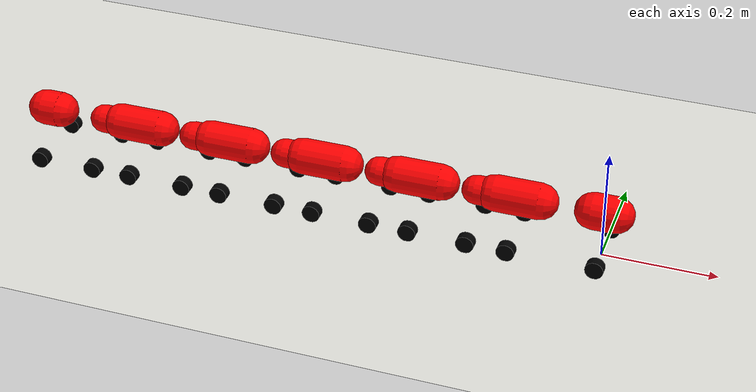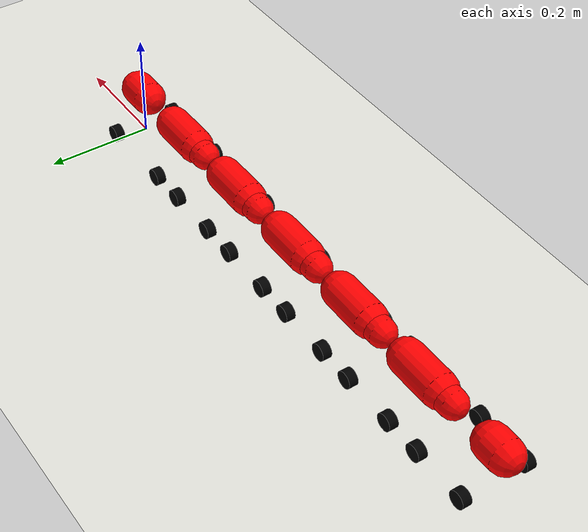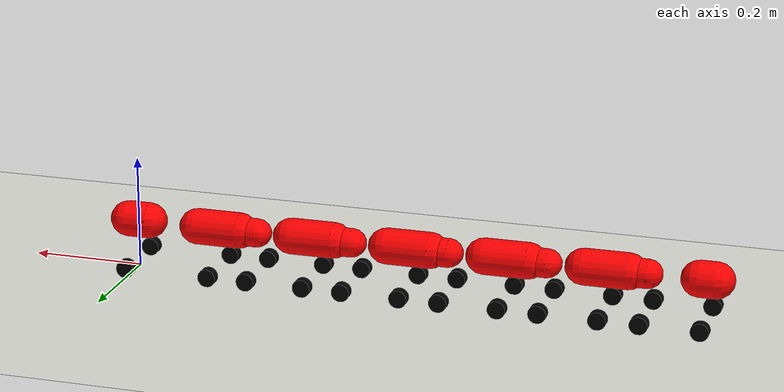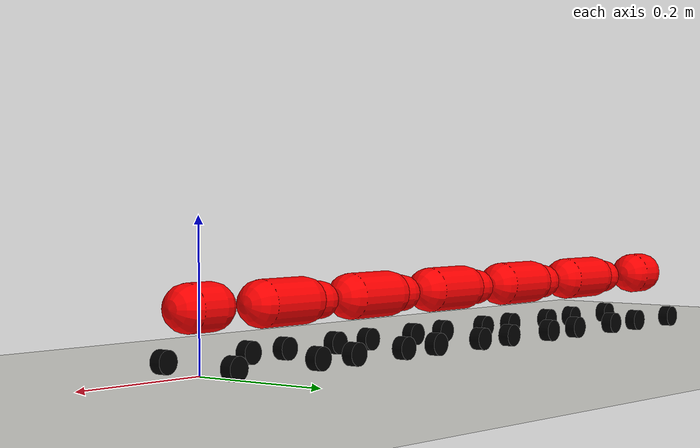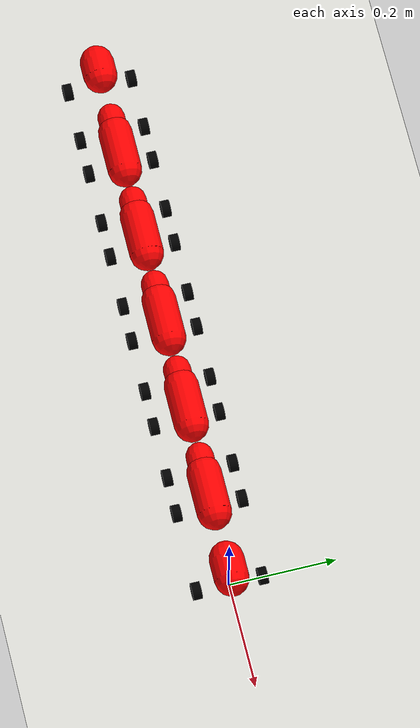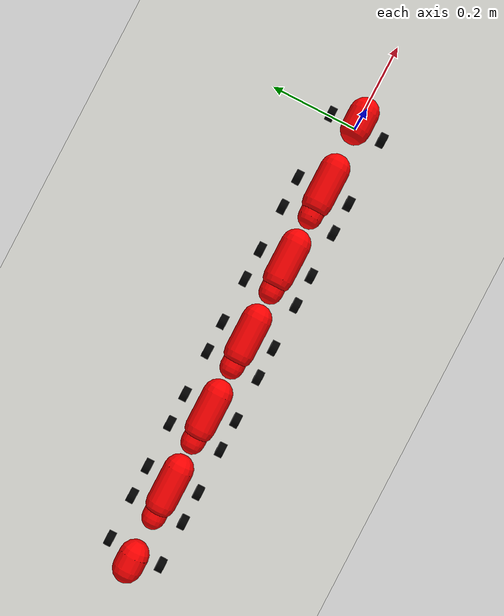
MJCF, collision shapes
<mujoco model="worm_v6_longworm2">
  <compiler meshdir="D:\doso\robot\worm-sim-ribbon-publish\meshes" angle="radian" />
  <option timestep="0.002" gravity="0 0 -9.81" />
  <size memory="500M" />

  <visual>
    <global offwidth="1920" offheight="1080" />
    <quality shadowsize="4096" />
    <map znear="0.001" />
  </visual>

  <default>
    <geom condim="4" />
  </default>

  <asset>
    <texture name="grid" type="2d" builtin="checker" width="512" height="512" rgb1="0.93 0.93 0.90" rgb2="0.82 0.82 0.80" />
    <material name="grid_mat" texture="grid" texrepeat="20 20" reflectance="0.1" />
    <mesh name="base_link" file="longworm2/base_link.STL" smoothnormal="true" />
    <mesh name="w1-1_Link" file="longworm2/w1-1_Link.STL" smoothnormal="true" />
    <mesh name="w1-2_Link" file="longworm2/w1-2_Link.STL" smoothnormal="true" />
    <mesh name="back1_Link" file="longworm2/back1_Link.STL" smoothnormal="true" />
    <mesh name="w1-3_Link" file="longworm2/w1-3_Link.STL" smoothnormal="true" />
    <mesh name="w1-4_Link" file="longworm2/w1-4_Link.STL" smoothnormal="true" />
    <mesh name="front2_Link" file="longworm2/front2_Link.STL" smoothnormal="true" />
    <mesh name="w2-1_Link" file="longworm2/w2-1_Link.STL" smoothnormal="true" />
    <mesh name="w2-2_Link" file="longworm2/w2-2_Link.STL" smoothnormal="true" />
    <mesh name="back2_Link" file="longworm2/back2_Link.STL" smoothnormal="true" />
    <mesh name="w2-3_Link" file="longworm2/w2-3_Link.STL" smoothnormal="true" />
    <mesh name="w2-4_Link" file="longworm2/w2-4_Link.STL" smoothnormal="true" />
    <mesh name="front3_Link" file="longworm2/front3_Link.STL" smoothnormal="true" />
    <mesh name="w3-1_Link" file="longworm2/w3-1_Link.STL" smoothnormal="true" />
    <mesh name="w3-2_Link" file="longworm2/w3-2_Link.STL" smoothnormal="true" />
    <mesh name="back3_Link" file="longworm2/back3_Link.STL" smoothnormal="true" />
    <mesh name="w3-3_Link" file="longworm2/w3-3_Link.STL" smoothnormal="true" />
    <mesh name="w3-4_Link" file="longworm2/w3-4_Link.STL" smoothnormal="true" />
    <mesh name="front4_Link" file="longworm2/front4_Link.STL" smoothnormal="true" />
    <mesh name="w4-1_Link" file="longworm2/w4-1_Link.STL" smoothnormal="true" />
    <mesh name="w4-2_Link" file="longworm2/w4-2_Link.STL" smoothnormal="true" />
    <mesh name="back4_Link" file="longworm2/back4_Link.STL" smoothnormal="true" />
    <mesh name="w4-3_Link" file="longworm2/w4-3_Link.STL" smoothnormal="true" />
    <mesh name="w4-4_Link" file="longworm2/w4-4_Link.STL" smoothnormal="true" />
    <mesh name="front5_Link" file="longworm2/front5_Link.STL" smoothnormal="true" />
    <mesh name="w5-1_Link" file="longworm2/w5-1_Link.STL" smoothnormal="true" />
    <mesh name="w5-2_Link" file="longworm2/w5-2_Link.STL" smoothnormal="true" />
    <mesh name="back5_Link" file="longworm2/back5_Link.STL" smoothnormal="true" />
    <mesh name="w5-3_Link" file="longworm2/w5-3_Link.STL" smoothnormal="true" />
    <mesh name="w5-4_Link" file="longworm2/w5-4_Link.STL" smoothnormal="true" />
    <mesh name="front6_Link" file="longworm2/front6_Link.STL" smoothnormal="true" />
    <mesh name="w6-1_Link" file="longworm2/w6-1_Link.STL" smoothnormal="true" />
    <mesh name="w6-2_Link" file="longworm2/w6-2_Link.STL" smoothnormal="true" />
    <mesh name="back6_Link" file="longworm2/back6_Link.STL" smoothnormal="true" />
    <mesh name="w6-3_Link" file="longworm2/w6-3_Link.STL" smoothnormal="true" />
    <mesh name="w6-4_Link" file="longworm2/w6-4_Link.STL" smoothnormal="true" />
  </asset>

  <worldbody>
    <light pos="0 0 3.0" dir="0 0 -1" diffuse="0.9 0.9 0.9" ambient="0.3 0.3 0.3" />
    <light pos="1.0 -0.5 2.5" dir="-0.3 0.2 -1" diffuse="0.5 0.5 0.5" />
    <light pos="-1.0 0.5 2.0" dir="0.3 -0.1 -1" diffuse="0.3 0.3 0.3" />
    <geom name="floor" type="plane" size="10 10 0.1" material="grid_mat" friction="1.0 0.005 0.001" />

    <body name="base_link" pos="0.000000 0.000000 0.086000">
      <freejoint name="root" />
      <geom name="vis_base_link" type="mesh" mesh="base_link" rgba="0.79 0.82 0.93 1" contype="0" conaffinity="0" mass="0.001" />
      <geom name="col_base_link" type="capsule" fromto="-0.02 0 0  0.02 0 0" size="0.032" mass="0.4217" rgba="1 0 0 0" friction="0.3 0.005 0.001" />
      <body name="w1-1_Link" pos="0.002500 0.061760 -0.071558">
        <joint name="w1-1" type="hinge" axis="0.00000 -1.00000 0.00000" damping="0.002" armature="0.0002" />
        <geom name="vis_w1-1_Link" type="mesh" mesh="w1-1_Link" rgba="0.79 0.82 0.93 1" contype="0" conaffinity="0" mass="0.001" />
        <geom name="col_w1-1_Link" type="cylinder" size="0.016 0.0085" euler="1.5708 0 0" mass="0.0088" rgba="0 0 0 0" friction="1.5 0.01 0.001" />
      </body>
      <body name="w1-2_Link" pos="0.002500 -0.061760 -0.071558">
        <joint name="w1-2" type="hinge" axis="0.00000 1.00000 0.00000" damping="0.002" armature="0.0002" />
        <geom name="vis_w1-2_Link" type="mesh" mesh="w1-2_Link" rgba="0.79 0.82 0.93 1" contype="0" conaffinity="0" mass="0.001" />
        <geom name="col_w1-2_Link" type="cylinder" size="0.016 0.0085" euler="1.5708 0 0" mass="0.0088" rgba="0 0 0 0" friction="1.5 0.01 0.001" />
      </body>
      <body name="back1_Link" pos="-0.151000 0.000000 -0.001535">
        <joint name="back1" type="slide" axis="-0.99984 0.00000 -0.01802" range="-0.0500 0.0000" damping="10" stiffness="300" />
        <geom name="vis_back1_Link" type="mesh" mesh="back1_Link" rgba="0.78 0.76 0.74 1" contype="0" conaffinity="0" mass="0.001" />
        <geom name="col_back1_Link" type="capsule" fromto="-0.04 0 0  0.04 0 0" size="0.032" mass="0.5428" rgba="1 0 0 0" friction="0.3 0.005 0.001" />
        <body name="w1-3_Link" pos="-0.000500 0.061760 -0.070023">
          <joint name="w1-3" type="hinge" axis="0.00000 -1.00000 0.00000" damping="0.002" armature="0.0002" />
          <geom name="vis_w1-3_Link" type="mesh" mesh="w1-3_Link" rgba="0.79 0.82 0.93 1" contype="0" conaffinity="0" mass="0.001" />
          <geom name="col_w1-3_Link" type="cylinder" size="0.016 0.0085" euler="1.5708 0 0" mass="0.0088" rgba="0 0 0 0" friction="1.5 0.01 0.001" />
        </body>
        <body name="w1-4_Link" pos="-0.000500 -0.061760 -0.070023">
          <joint name="w1-4" type="hinge" axis="0.00000 1.00000 0.00000" damping="0.002" armature="0.0002" />
          <geom name="vis_w1-4_Link" type="mesh" mesh="w1-4_Link" rgba="0.79 0.82 0.93 1" contype="0" conaffinity="0" mass="0.001" />
          <geom name="col_w1-4_Link" type="cylinder" size="0.016 0.0085" euler="1.5708 0 0" mass="0.0088" rgba="0 0 0 0" friction="1.5 0.01 0.001" />
        </body>
        <body name="front2_Link" pos="-0.058000 0.000000 -0.001045">
          <joint name="front2" type="hinge" axis="0.00000 0.00000 -1.00000" range="-1.5700 1.5700" damping="5" />
          <geom name="vis_front2_Link" type="mesh" mesh="front2_Link" rgba="1.0 1.0 1.0 1" contype="0" conaffinity="0" mass="0.001" />
          <geom name="col_front2_Link" type="capsule" fromto="-0.015 0 0  0.015 0 0" size="0.0256" mass="0.0656" rgba="1 0 0 0" friction="0.3 0.005 0.001" />
          <body name="w2-1_Link" pos="-0.014000 0.061760 -0.068978">
            <joint name="w2-1" type="hinge" axis="0.00000 -1.00000 0.00000" damping="0.002" armature="0.0002" />
            <geom name="vis_w2-1_Link" type="mesh" mesh="w2-1_Link" rgba="0.79 0.82 0.93 1" contype="0" conaffinity="0" mass="0.001" />
            <geom name="col_w2-1_Link" type="cylinder" size="0.016 0.0085" euler="1.5708 0 0" mass="0.0088" rgba="0 0 0 0" friction="1.5 0.01 0.001" />
          </body>
          <body name="w2-2_Link" pos="-0.014000 -0.061760 -0.068978">
            <joint name="w2-2" type="hinge" axis="0.00000 1.00000 0.00000" damping="0.002" armature="0.0002" />
            <geom name="vis_w2-2_Link" type="mesh" mesh="w2-2_Link" rgba="0.79 0.82 0.93 1" contype="0" conaffinity="0" mass="0.001" />
            <geom name="col_w2-2_Link" type="cylinder" size="0.016 0.0085" euler="1.5708 0 0" mass="0.0088" rgba="0 0 0 0" friction="1.5 0.01 0.001" />
          </body>
          <body name="back2_Link" pos="-0.117500 0.000000 0.001045">
            <joint name="back2" type="slide" axis="-0.99984 0.00000 -0.01802" range="-0.0500 0.0000" damping="10" stiffness="300" />
            <geom name="vis_back2_Link" type="mesh" mesh="back2_Link" rgba="0.78 0.76 0.74 1" contype="0" conaffinity="0" mass="0.001" />
            <geom name="col_back2_Link" type="capsule" fromto="-0.04 0 0  0.04 0 0" size="0.032" mass="0.5428" rgba="1 0 0 0" friction="0.3 0.005 0.001" />
            <body name="w2-3_Link" pos="-0.000500 0.061760 -0.070023">
              <joint name="w2-3" type="hinge" axis="0.00000 -1.00000 0.00000" damping="0.002" armature="0.0002" />
              <geom name="vis_w2-3_Link" type="mesh" mesh="w2-3_Link" rgba="0.79 0.82 0.93 1" contype="0" conaffinity="0" mass="0.001" />
              <geom name="col_w2-3_Link" type="cylinder" size="0.016 0.0085" euler="1.5708 0 0" mass="0.0088" rgba="0 0 0 0" friction="1.5 0.01 0.001" />
            </body>
            <body name="w2-4_Link" pos="-0.000500 -0.061760 -0.070023">
              <joint name="w2-4" type="hinge" axis="0.00000 1.00000 0.00000" damping="0.002" armature="0.0002" />
              <geom name="vis_w2-4_Link" type="mesh" mesh="w2-4_Link" rgba="0.79 0.82 0.93 1" contype="0" conaffinity="0" mass="0.001" />
              <geom name="col_w2-4_Link" type="cylinder" size="0.016 0.0085" euler="1.5708 0 0" mass="0.0088" rgba="0 0 0 0" friction="1.5 0.01 0.001" />
            </body>
            <body name="front3_Link" pos="-0.058000 0.000000 -0.001045">
              <joint name="front3" type="hinge" axis="0.00000 0.00000 -1.00000" range="-1.5700 1.5700" damping="5" />
              <geom name="vis_front3_Link" type="mesh" mesh="front3_Link" rgba="1.0 1.0 1.0 1" contype="0" conaffinity="0" mass="0.001" />
              <geom name="col_front3_Link" type="capsule" fromto="-0.015 0 0  0.015 0 0" size="0.0256" mass="0.0656" rgba="1 0 0 0" friction="0.3 0.005 0.001" />
              <body name="w3-1_Link" pos="-0.014000 0.061760 -0.068978">
                <joint name="w3-1" type="hinge" axis="0.00000 -1.00000 0.00000" damping="0.002" armature="0.0002" />
                <geom name="vis_w3-1_Link" type="mesh" mesh="w3-1_Link" rgba="0.79 0.82 0.93 1" contype="0" conaffinity="0" mass="0.001" />
                <geom name="col_w3-1_Link" type="cylinder" size="0.016 0.0085" euler="1.5708 0 0" mass="0.0088" rgba="0 0 0 0" friction="1.5 0.01 0.001" />
              </body>
              <body name="w3-2_Link" pos="-0.014000 -0.061760 -0.068978">
                <joint name="w3-2" type="hinge" axis="0.00000 1.00000 0.00000" damping="0.002" armature="0.0002" />
                <geom name="vis_w3-2_Link" type="mesh" mesh="w3-2_Link" rgba="0.79 0.82 0.93 1" contype="0" conaffinity="0" mass="0.001" />
                <geom name="col_w3-2_Link" type="cylinder" size="0.016 0.0085" euler="1.5708 0 0" mass="0.0088" rgba="0 0 0 0" friction="1.5 0.01 0.001" />
              </body>
              <body name="back3_Link" pos="-0.117500 0.000000 0.001045">
                <joint name="back3" type="slide" axis="-0.99984 0.00000 -0.01802" range="-0.0500 0.0000" damping="10" stiffness="300" />
                <geom name="vis_back3_Link" type="mesh" mesh="back3_Link" rgba="0.78 0.76 0.74 1" contype="0" conaffinity="0" mass="0.001" />
                <geom name="col_back3_Link" type="capsule" fromto="-0.04 0 0  0.04 0 0" size="0.032" mass="0.5428" rgba="1 0 0 0" friction="0.3 0.005 0.001" />
                <body name="w3-3_Link" pos="-0.000500 0.061760 -0.070023">
                  <joint name="w3-3" type="hinge" axis="0.00000 -1.00000 0.00000" damping="0.002" armature="0.0002" />
                  <geom name="vis_w3-3_Link" type="mesh" mesh="w3-3_Link" rgba="0.79 0.82 0.93 1" contype="0" conaffinity="0" mass="0.001" />
                  <geom name="col_w3-3_Link" type="cylinder" size="0.016 0.0085" euler="1.5708 0 0" mass="0.0088" rgba="0 0 0 0" friction="1.5 0.01 0.001" />
                </body>
                <body name="w3-4_Link" pos="-0.000500 -0.061760 -0.070023">
                  <joint name="w3-4" type="hinge" axis="0.00000 1.00000 0.00000" damping="0.002" armature="0.0002" />
                  <geom name="vis_w3-4_Link" type="mesh" mesh="w3-4_Link" rgba="0.79 0.82 0.93 1" contype="0" conaffinity="0" mass="0.001" />
                  <geom name="col_w3-4_Link" type="cylinder" size="0.016 0.0085" euler="1.5708 0 0" mass="0.0088" rgba="0 0 0 0" friction="1.5 0.01 0.001" />
                </body>
                <body name="front4_Link" pos="-0.058000 0.000000 -0.001045">
                  <joint name="front4" type="hinge" axis="0.00000 0.00000 -1.00000" range="-1.5700 1.5700" damping="5" />
                  <geom name="vis_front4_Link" type="mesh" mesh="front4_Link" rgba="1.0 1.0 1.0 1" contype="0" conaffinity="0" mass="0.001" />
                  <geom name="col_front4_Link" type="capsule" fromto="-0.015 0 0  0.015 0 0" size="0.0256" mass="0.0656" rgba="1 0 0 0" friction="0.3 0.005 0.001" />
                  <body name="w4-1_Link" pos="-0.014000 0.061760 -0.068978">
                    <joint name="w4-1" type="hinge" axis="0.00000 -1.00000 0.00000" damping="0.002" armature="0.0002" />
                    <geom name="vis_w4-1_Link" type="mesh" mesh="w4-1_Link" rgba="0.79 0.82 0.93 1" contype="0" conaffinity="0" mass="0.001" />
                    <geom name="col_w4-1_Link" type="cylinder" size="0.016 0.0085" euler="1.5708 0 0" mass="0.0088" rgba="0 0 0 0" friction="1.5 0.01 0.001" />
                  </body>
                  <body name="w4-2_Link" pos="-0.014000 -0.061760 -0.068978">
                    <joint name="w4-2" type="hinge" axis="0.00000 1.00000 0.00000" damping="0.002" armature="0.0002" />
                    <geom name="vis_w4-2_Link" type="mesh" mesh="w4-2_Link" rgba="0.79 0.82 0.93 1" contype="0" conaffinity="0" mass="0.001" />
                    <geom name="col_w4-2_Link" type="cylinder" size="0.016 0.0085" euler="1.5708 0 0" mass="0.0088" rgba="0 0 0 0" friction="1.5 0.01 0.001" />
                  </body>
                  <body name="back4_Link" pos="-0.117500 0.000000 0.001045">
                    <joint name="back4" type="slide" axis="-0.99984 -0.00000 -0.01802" range="-0.0500 -0.0000" damping="10" stiffness="300" />
                    <geom name="vis_back4_Link" type="mesh" mesh="back4_Link" rgba="0.78 0.76 0.74 1" contype="0" conaffinity="0" mass="0.001" />
                    <geom name="col_back4_Link" type="capsule" fromto="-0.04 0 0  0.04 0 0" size="0.032" mass="0.5428" rgba="1 0 0 0" friction="0.3 0.005 0.001" />
                    <body name="w4-3_Link" pos="-0.000500 0.061760 -0.070023">
                      <joint name="w4-3" type="hinge" axis="0.00000 -1.00000 0.00000" damping="0.002" armature="0.0002" />
                      <geom name="vis_w4-3_Link" type="mesh" mesh="w4-3_Link" rgba="0.79 0.82 0.93 1" contype="0" conaffinity="0" mass="0.001" />
                      <geom name="col_w4-3_Link" type="cylinder" size="0.016 0.0085" euler="1.5708 0 0" mass="0.0088" rgba="0 0 0 0" friction="1.5 0.01 0.001" />
                    </body>
                    <body name="w4-4_Link" pos="-0.000500 -0.061760 -0.070023">
                      <joint name="w4-4" type="hinge" axis="0.00000 1.00000 0.00000" damping="0.002" armature="0.0002" />
                      <geom name="vis_w4-4_Link" type="mesh" mesh="w4-4_Link" rgba="0.79 0.82 0.93 1" contype="0" conaffinity="0" mass="0.001" />
                      <geom name="col_w4-4_Link" type="cylinder" size="0.016 0.0085" euler="1.5708 0 0" mass="0.0088" rgba="0 0 0 0" friction="1.5 0.01 0.001" />
                    </body>
                    <body name="front5_Link" pos="-0.058000 0.000000 -0.001045">
                      <joint name="front5" type="hinge" axis="0.00000 0.00000 -1.00000" range="-1.5700 1.5700" damping="5" />
                      <geom name="vis_front5_Link" type="mesh" mesh="front5_Link" rgba="1.0 1.0 1.0 1" contype="0" conaffinity="0" mass="0.001" />
                      <geom name="col_front5_Link" type="capsule" fromto="-0.015 0 0  0.015 0 0" size="0.0256" mass="0.0656" rgba="1 0 0 0" friction="0.3 0.005 0.001" />
                      <body name="w5-1_Link" pos="-0.014000 0.061760 -0.068978">
                        <joint name="w5-1" type="hinge" axis="0.00000 -1.00000 0.00000" damping="0.002" armature="0.0002" />
                        <geom name="vis_w5-1_Link" type="mesh" mesh="w5-1_Link" rgba="0.79 0.82 0.93 1" contype="0" conaffinity="0" mass="0.001" />
                        <geom name="col_w5-1_Link" type="cylinder" size="0.016 0.0085" euler="1.5708 0 0" mass="0.0088" rgba="0 0 0 0" friction="1.5 0.01 0.001" />
                      </body>
                      <body name="w5-2_Link" pos="-0.014000 -0.061760 -0.068978">
                        <joint name="w5-2" type="hinge" axis="0.00000 1.00000 0.00000" damping="0.002" armature="0.0002" />
                        <geom name="vis_w5-2_Link" type="mesh" mesh="w5-2_Link" rgba="0.79 0.82 0.93 1" contype="0" conaffinity="0" mass="0.001" />
                        <geom name="col_w5-2_Link" type="cylinder" size="0.016 0.0085" euler="1.5708 0 0" mass="0.0088" rgba="0 0 0 0" friction="1.5 0.01 0.001" />
                      </body>
                      <body name="back5_Link" pos="-0.117500 0.000000 0.001045">
                        <joint name="back5" type="slide" axis="-0.99984 0.00000 -0.01802" range="-0.0500 0.0000" damping="10" stiffness="300" />
                        <geom name="vis_back5_Link" type="mesh" mesh="back5_Link" rgba="0.78 0.76 0.74 1" contype="0" conaffinity="0" mass="0.001" />
                        <geom name="col_back5_Link" type="capsule" fromto="-0.04 0 0  0.04 0 0" size="0.032" mass="0.5428" rgba="1 0 0 0" friction="0.3 0.005 0.001" />
                        <body name="w5-3_Link" pos="-0.000500 0.061760 -0.070023">
                          <joint name="w5-3" type="hinge" axis="0.00000 -1.00000 0.00000" damping="0.002" armature="0.0002" />
                          <geom name="vis_w5-3_Link" type="mesh" mesh="w5-3_Link" rgba="0.79 0.82 0.93 1" contype="0" conaffinity="0" mass="0.001" />
                          <geom name="col_w5-3_Link" type="cylinder" size="0.016 0.0085" euler="1.5708 0 0" mass="0.0088" rgba="0 0 0 0" friction="1.5 0.01 0.001" />
                        </body>
                        <body name="w5-4_Link" pos="-0.000500 -0.061760 -0.070023">
                          <joint name="w5-4" type="hinge" axis="0.00000 1.00000 0.00000" damping="0.002" armature="0.0002" />
                          <geom name="vis_w5-4_Link" type="mesh" mesh="w5-4_Link" rgba="0.79 0.82 0.93 1" contype="0" conaffinity="0" mass="0.001" />
                          <geom name="col_w5-4_Link" type="cylinder" size="0.016 0.0085" euler="1.5708 0 0" mass="0.0088" rgba="0 0 0 0" friction="1.5 0.01 0.001" />
                        </body>
                        <body name="front6_Link" pos="-0.058000 0.000000 -0.001045">
                          <joint name="front6" type="hinge" axis="0.00000 0.00000 -1.00000" range="-1.5700 1.5700" damping="5" />
                          <geom name="vis_front6_Link" type="mesh" mesh="front6_Link" rgba="1.0 1.0 1.0 1" contype="0" conaffinity="0" mass="0.001" />
                          <geom name="col_front6_Link" type="capsule" fromto="-0.015 0 0  0.015 0 0" size="0.0256" mass="0.0656" rgba="1 0 0 0" friction="0.3 0.005 0.001" />
                          <body name="w6-1_Link" pos="-0.014000 0.061760 -0.068978">
                            <joint name="w6-1" type="hinge" axis="0.00000 -1.00000 0.00000" damping="0.002" armature="0.0002" />
                            <geom name="vis_w6-1_Link" type="mesh" mesh="w6-1_Link" rgba="0.79 0.82 0.93 1" contype="0" conaffinity="0" mass="0.001" />
                            <geom name="col_w6-1_Link" type="cylinder" size="0.016 0.0085" euler="1.5708 0 0" mass="0.0088" rgba="0 0 0 0" friction="1.5 0.01 0.001" />
                          </body>
                          <body name="w6-2_Link" pos="-0.014000 -0.061760 -0.068978">
                            <joint name="w6-2" type="hinge" axis="0.00000 1.00000 0.00000" damping="0.002" armature="0.0002" />
                            <geom name="vis_w6-2_Link" type="mesh" mesh="w6-2_Link" rgba="0.79 0.82 0.93 1" contype="0" conaffinity="0" mass="0.001" />
                            <geom name="col_w6-2_Link" type="cylinder" size="0.016 0.0085" euler="1.5708 0 0" mass="0.0088" rgba="0 0 0 0" friction="1.5 0.01 0.001" />
                          </body>
                          <body name="back6_Link" pos="-0.117500 0.000000 0.001045">
                            <joint name="back6" type="slide" axis="-0.99984 0.00000 -0.01802" range="-0.0500 0.0000" damping="10" stiffness="300" />
                            <geom name="vis_back6_Link" type="mesh" mesh="back6_Link" rgba="0.78 0.76 0.74 1" contype="0" conaffinity="0" mass="0.001" />
                            <geom name="col_back6_Link" type="capsule" fromto="-0.015 0 0  0.015 0 0" size="0.032" mass="0.5099" rgba="1 0 0 0" friction="0.3 0.005 0.001" />
                            <body name="w6-3_Link" pos="-0.000500 0.061760 -0.070023">
                              <joint name="w6-3" type="hinge" axis="0.00000 -1.00000 0.00000" damping="0.002" armature="0.0002" />
                              <geom name="vis_w6-3_Link" type="mesh" mesh="w6-3_Link" rgba="0.79 0.82 0.93 1" contype="0" conaffinity="0" mass="0.001" />
                              <geom name="col_w6-3_Link" type="cylinder" size="0.016 0.0085" euler="1.5708 0 0" mass="0.0088" rgba="0 0 0 0" friction="1.5 0.01 0.001" />
                            </body>
                            <body name="w6-4_Link" pos="-0.000500 -0.061760 -0.070023">
                              <joint name="w6-4" type="hinge" axis="0.00000 1.00000 0.00000" damping="0.002" armature="0.0002" />
                              <geom name="vis_w6-4_Link" type="mesh" mesh="w6-4_Link" rgba="0.79 0.82 0.93 1" contype="0" conaffinity="0" mass="0.001" />
                              <geom name="col_w6-4_Link" type="cylinder" size="0.016 0.0085" euler="1.5708 0 0" mass="0.0088" rgba="0 0 0 0" friction="1.5 0.01 0.001" />
                            </body>
                          </body>
                        </body>
                      </body>
                    </body>
                  </body>
                </body>
              </body>
            </body>
          </body>
        </body>
      </body>
    </body>
  </worldbody>

  <actuator>
    <position name="act_back1" joint="back1" kp="800.0" forcerange="-50.0 50.0" />
    <position name="act_back2" joint="back2" kp="800.0" forcerange="-50.0 50.0" />
    <position name="act_back3" joint="back3" kp="800.0" forcerange="-50.0 50.0" />
    <position name="act_back4" joint="back4" kp="800.0" forcerange="-50.0 50.0" />
    <position name="act_back5" joint="back5" kp="800.0" forcerange="-50.0 50.0" />
    <position name="act_back6" joint="back6" kp="800.0" forcerange="-50.0 50.0" />
    <position name="act_front2" joint="front2" kp="200.0" forcerange="-20.0 20.0" />
    <position name="act_front3" joint="front3" kp="200.0" forcerange="-20.0 20.0" />
    <position name="act_front4" joint="front4" kp="200.0" forcerange="-20.0 20.0" />
    <position name="act_front5" joint="front5" kp="200.0" forcerange="-20.0 20.0" />
    <position name="act_front6" joint="front6" kp="200.0" forcerange="-20.0 20.0" />
  </actuator>
</mujoco>
